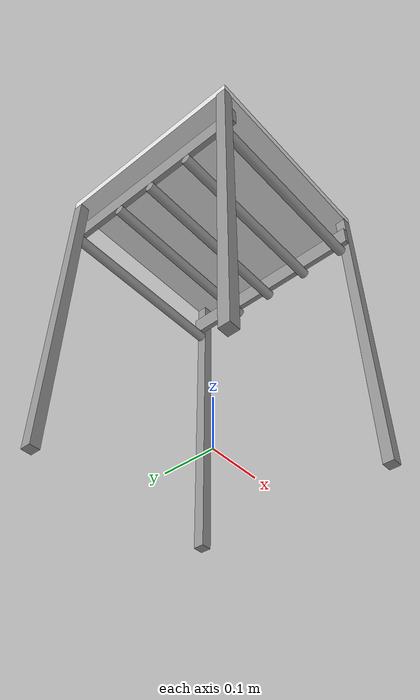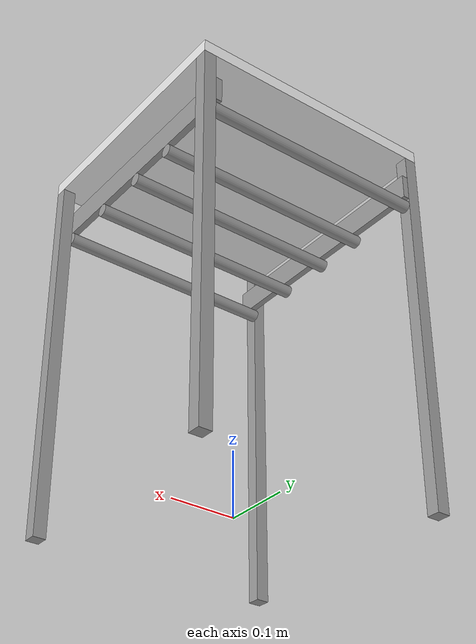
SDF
<?xml version="1.0" ?>
<sdf version="1.5">
  <model name="wrc_tall_table">
    <static>true</static>
    <link name="link">
      <inertial>
        <mass>1.0</mass>
      </inertial>
      <collision name="top">
        <pose>0 0 0.59 0 0 0</pose>
        <geometry>
          <box>
            <size>0.40 0.40 0.02</size>
          </box>
        </geometry>
      </collision>
      <visual name="top_v">
        <pose>0 0 0.59 0 0 0</pose>
        <geometry>
          <box>
            <size>0.40 0.40 0.02</size>
          </box>
        </geometry>
        <material>
          <script>
            <uri>file://media/materials/scripts/gazebo.material</uri>
            <name>Gazebo/White</name>
          </script>
        </material>
      </visual>
      <collision name="leg1">
        <pose>0.19 0.19 0.285 0 0 0</pose>
        <geometry>
          <box>
            <size>0.02 0.02 0.60</size>
          </box>
        </geometry>
      </collision>
      <visual name="leg1_v">
        <pose>0.19 0.19 0.285 0 0 0</pose>
        <geometry>
          <box>
            <size>0.02 0.02 0.60</size>
          </box>
        </geometry>
        <material>
          <script>
            <uri>file://media/materials/scripts/gazebo.material</uri>
            <name>Gazebo/Gray</name>
          </script>
        </material>
      </visual>
      <collision name="leg2">
        <pose>-0.19 0.19 0.285 0 0 0</pose>
        <geometry>
          <box>
            <size>0.02 0.02 0.60</size>
          </box>
        </geometry>
      </collision>
      <visual name="leg2_v">
        <pose>-0.19 0.19 0.285 0 0 0</pose>
        <geometry>
          <box>
            <size>0.02 0.02 0.60</size>
          </box>
        </geometry>
        <material>
          <script>
            <uri>file://media/materials/scripts/gazebo.material</uri>
            <name>Gazebo/Gray</name>
          </script>
        </material>
      </visual>
      <collision name="leg3">
        <pose>0.19 -0.19 0.285 0 0 0</pose>
        <geometry>
          <box>
            <size>0.02 0.02 0.60</size>
          </box>
        </geometry>
      </collision>
      <visual name="leg3_v">
        <pose>0.19 -0.19 0.285 0 0 0</pose>
        <geometry>
          <box>
            <size>0.02 0.02 0.60</size>
          </box>
        </geometry>
        <material>
          <script>
            <uri>file://media/materials/scripts/gazebo.material</uri>
            <name>Gazebo/Gray</name>
          </script>
        </material>
      </visual>
      <collision name="leg4">
        <pose>-0.19 -0.19 0.285 0 0 0</pose>
        <geometry>
          <box>
            <size>0.02 0.02 0.60</size>
          </box>
        </geometry>
      </collision>
      <visual name="leg4_v">
        <pose>-0.19 -0.19 0.285 0 0 0</pose>
        <geometry>
          <box>
            <size>0.02 0.02 0.60</size>
          </box>
        </geometry>
        <material>
          <script>
            <uri>file://media/materials/scripts/gazebo.material</uri>
            <name>Gazebo/Gray</name>
          </script>
        </material>
      </visual>
      <collision name="side_panel1">
        <pose>0.175 0 0.52 0 0 0</pose>
        <geometry>
          <box>
            <size>0.01 0.40 0.04</size>
          </box>
        </geometry>
      </collision>
      <visual name="side_panel1_v">
        <pose>0.175 0 0.52 0 0 0</pose>
        <geometry>
          <box>
            <size>0.01 0.40 0.04</size>
          </box>
        </geometry>
        <material>
          <script>
            <uri>file://media/materials/scripts/gazebo.material</uri>
            <name>Gazebo/Gray</name>
          </script>
        </material>
      </visual>
      <collision name="side_panel2">
        <pose>-0.175 0 0.52 0 0 0</pose>
        <geometry>
          <box>
            <size>0.01 0.40 0.04</size>
          </box>
        </geometry>
      </collision>
      <visual name="side_panel2_v">
        <pose>-0.175 0 0.52 0 0 0</pose>
        <geometry>
          <box>
            <size>0.01 0.40 0.04</size>
          </box>
        </geometry>
        <material>
          <script>
            <uri>file://media/materials/scripts/gazebo.material</uri>
            <name>Gazebo/Gray</name>
          </script>
        </material>
      </visual>
      <collision name="bar1">
        <pose>0 0.20 0.49 0 1.57 0</pose>
        <geometry>
          <cylinder>
            <radius>0.01</radius>
            <length>0.36</length>
          </cylinder>
        </geometry>
      </collision>
      <visual name="bar1_v">
        <pose>0 0.19 0.49 0 1.57 0</pose>
        <geometry>
          <cylinder>
            <radius>0.01</radius>
            <length>0.36</length>
          </cylinder>
        </geometry>
        <material>
          <script>
            <uri>file://media/materials/scripts/gazebo.material</uri>
            <name>Gazebo/Gray</name>
          </script>
        </material>
      </visual>
      <collision name="bar2">
        <pose>0 0.08 0.49 0 1.57 0</pose>
        <geometry>
          <cylinder>
            <radius>0.01</radius>
            <length>0.36</length>
          </cylinder>
        </geometry>
      </collision>
      <visual name="bar2_v">
        <pose>0 0.08 0.49 0 1.57 0</pose>
        <geometry>
          <cylinder>
            <radius>0.01</radius>
            <length>0.36</length>
          </cylinder>
        </geometry>
        <material>
          <script>
            <uri>file://media/materials/scripts/gazebo.material</uri>
            <name>Gazebo/Gray</name>
          </script>
        </material>
      </visual>
      <collision name="bar3">
        <pose>0 0 0.49 0 1.57 0</pose>
        <geometry>
          <cylinder>
            <radius>0.01</radius>
            <length>0.36</length>
          </cylinder>
        </geometry>
      </collision>
      <visual name="bar3_v">
        <pose>0 0 0.49 0 1.57 0</pose>
        <geometry>
          <cylinder>
            <radius>0.01</radius>
            <length>0.36</length>
          </cylinder>
        </geometry>
        <material>
          <script>
            <uri>file://media/materials/scripts/gazebo.material</uri>
            <name>Gazebo/Gray</name>
          </script>
        </material>
      </visual>
      <collision name="bar4">
        <pose>0 -0.08 0.49 0 1.57 0</pose>
        <geometry>
          <cylinder>
            <radius>0.01</radius>
            <length>0.36</length>
          </cylinder>
        </geometry>
      </collision>
      <visual name="bar4_v">
        <pose>0 -0.09 0.49 0 1.57 0</pose>
        <geometry>
          <cylinder>
            <radius>0.01</radius>
            <length>0.36</length>
          </cylinder>
        </geometry>
        <material>
          <script>
            <uri>file://media/materials/scripts/gazebo.material</uri>
            <name>Gazebo/Gray</name>
          </script>
        </material>
      </visual>
      <collision name="bar5">
        <pose>0 -0.18 0.49 0 1.57 0</pose>
        <geometry>
          <cylinder>
            <radius>0.01</radius>
            <length>0.36</length>
          </cylinder>
        </geometry>
      </collision>
      <visual name="bar5_v">
        <pose>0 -0.18 0.49 0 1.57 0</pose>
        <geometry>
          <cylinder>
            <radius>0.01</radius>
            <length>0.36</length>
          </cylinder>
        </geometry>
        <material>
          <script>
            <uri>file://media/materials/scripts/gazebo.material</uri>
            <name>Gazebo/Gray</name>
          </script>
        </material>
      </visual>
    </link>
  </model>
</sdf>
